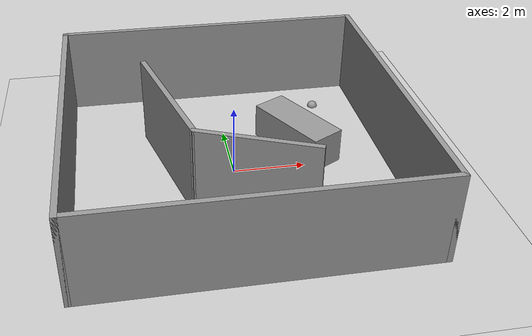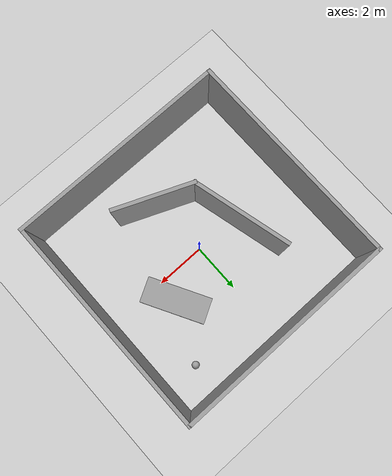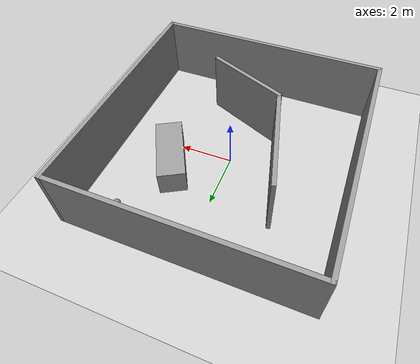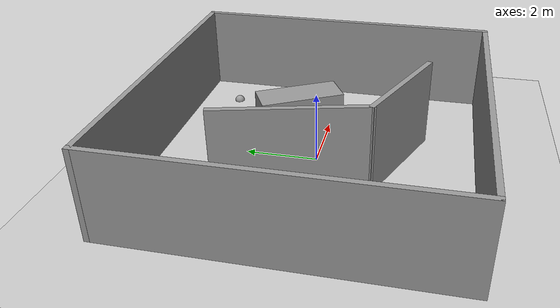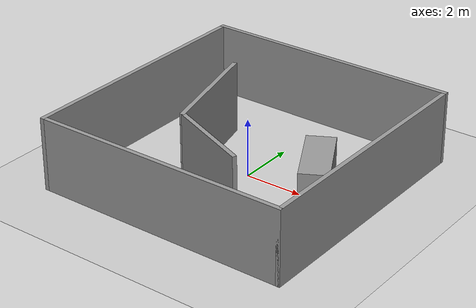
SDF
<sdf version="1.6">
 <world name="default">
  <light name="sun" type="directional">
   <pose>0 0 10 0 -0 0</pose>
   <diffuse>0.8 0.8 0.8 1</diffuse>
   <specular>0.2 0.2 0.2 1</specular>
   <attenuation>
    <range>1000</range>
    <constant>0.9</constant>
    <linear>0.01</linear>
    <quadratic>0.001</quadratic>
   </attenuation>
   <direction>-0.5 0.1 -0.9</direction>
  </light>
  <model name="ground_plane">
   <static>1</static>
   <link name="link">
    <collision name="collision">
     <geometry><plane><normal>0 0 1</normal><size>100 100</size></plane></geometry>
     <surface>
      <contact><collide_bitmask>65535</collide_bitmask></contact>
      <friction><ode><mu>100</mu><mu2>50</mu2></ode></friction>
     </surface>
    </collision>
    <visual name="visual">
     <cast_shadows>0</cast_shadows>
     <geometry><plane><normal>0 0 1</normal><size>100 100</size></plane></geometry>
     <material>
      <script><uri>file://media/materials/scripts/gazebo.material</uri><name>Gazebo/Grey</name></script>
     </material>
    </visual>
   </link>
  </model>
  <gravity>0 0 -9.8</gravity>
  <magnetic_field>6e-06 2.3e-05 -4.2e-05</magnetic_field>
  <atmosphere type="adiabatic"/>
  <physics name="default_physics" default="0" type="ode">
   <max_step_size>0.001</max_step_size>
   <real_time_factor>1</real_time_factor>
   <real_time_update_rate>1000</real_time_update_rate>
  </physics>
  <scene><ambient>0.4 0.4 0.4 1</ambient><background>0.7 0.7 0.7 1</background><shadows>1</shadows></scene>
  <audio><device>default</device></audio>
  <spherical_coordinates>
   <surface_model>EARTH_WGS84</surface_model>
   <latitude_deg>0</latitude_deg>
   <longitude_deg>0</longitude_deg>
   <elevation>0</elevation>
   <heading_deg>0</heading_deg>
  </spherical_coordinates>
  <model name="Confined_Area_10x10">
   <pose>-0.015712 0.019991 0 0 -0 0</pose>
   <link name="Wall_1">
    <collision name="Wall_1_Collision">
     <geometry><box><size>9 0.15 2.5</size></box></geometry>
     <pose>0 0 1.25 0 -0 0</pose>
    </collision>
    <visual name="Wall_1_Visual">
     <pose>0 0 1.25 0 -0 0</pose>
     <geometry><box><size>9 0.15 2.5</size></box></geometry>
     <material>
      <script><uri>file://media/materials/scripts/gazebo.material</uri><name>Gazebo/Grey</name></script>
      <ambient>1 1 1 1</ambient>
     </material>
     <meta><layer>0</layer></meta>
    </visual>
    <pose>4.425 0 0 0 -0 1.5708</pose>
   </link>
   <link name="Wall_2">
    <collision name="Wall_2_Collision">
     <geometry><box><size>9 0.15 2.5</size></box></geometry>
     <pose>0 0 1.25 0 -0 0</pose>
    </collision>
    <visual name="Wall_2_Visual">
     <pose>0 0 1.25 0 -0 0</pose>
     <geometry><box><size>9 0.15 2.5</size></box></geometry>
     <material>
      <script><uri>file://media/materials/scripts/gazebo.material</uri><name>Gazebo/Grey</name></script>
      <ambient>1 1 1 1</ambient>
     </material>
     <meta><layer>0</layer></meta>
    </visual>
    <pose>0 4.425 0 0 -0 3.14159</pose>
   </link>
   <link name="Wall_3">
    <collision name="Wall_3_Collision">
     <geometry><box><size>9 0.15 2.5</size></box></geometry>
     <pose>0 0 1.25 0 -0 0</pose>
    </collision>
    <visual name="Wall_3_Visual">
     <pose>0 0 1.25 0 -0 0</pose>
     <geometry><box><size>9 0.15 2.5</size></box></geometry>
     <material>
      <script><uri>file://media/materials/scripts/gazebo.material</uri><name>Gazebo/Grey</name></script>
      <ambient>1 1 1 1</ambient>
     </material>
     <meta><layer>0</layer></meta>
    </visual>
    <pose>-4.425 0 0 0 -0 -1.5708</pose>
   </link>
   <link name="Wall_4">
    <collision name="Wall_4_Collision">
     <geometry><box><size>9 0.15 2.5</size></box></geometry>
     <pose>0 0 1.25 0 -0 0</pose>
    </collision>
    <visual name="Wall_4_Visual">
     <pose>0 0 1.25 0 -0 0</pose>
     <geometry><box><size>9 0.15 2.5</size></box></geometry>
     <material>
      <script><uri>file://media/materials/scripts/gazebo.material</uri><name>Gazebo/Grey</name></script>
      <ambient>1 1 1 1</ambient>
     </material>
     <meta><layer>0</layer></meta>
    </visual>
    <pose>0 -4.425 0 0 -0 0</pose>
   </link>
   <static>1</static>
  </model>
  <model name="Untitled">
   <pose>-0.320911 -0.315131 0 0 -0 1.17572</pose>
   <link name="Wall_6">
    <collision name="Wall_6_Collision">
     <geometry><box><size>3.25 0.15 2.5</size></box></geometry>
     <pose>0 0 1.25 0 -0 0</pose>
    </collision>
    <visual name="Wall_6_Visual">
     <pose>0 0 1.25 0 -0 0</pose>
     <geometry><box><size>3.25 0.15 2.5</size></box></geometry>
     <material>
      <script><uri>file://media/materials/scripts/gazebo.material</uri><name>Gazebo/Grey</name></script>
      <ambient>1 1 1 1</ambient>
     </material>
     <meta><layer>0</layer></meta>
    </visual>
    <pose>-1.57215 -1.19441 0 0 -0 1.5708</pose>
   </link>
   <link name="Wall_9">
    <collision name="Wall_9_Collision">
     <geometry><box><size>4.08072 0.15 2.5</size></box></geometry>
     <pose>0 0 1.25 0 -0 0</pose>
    </collision>
    <visual name="Wall_9_Visual">
     <pose>0 0 1.25 0 -0 0</pose>
     <geometry><box><size>4.08072 0.15 2.5</size></box></geometry>
     <material>
      <script><uri>file://media/materials/scripts/gazebo.material</uri><name>Gazebo/Grey</name></script>
      <ambient>1 1 1 1</ambient>
     </material>
     <meta><layer>0</layer></meta>
    </visual>
    <pose>0 1.535 0 0 -0 0.643622</pose>
   </link>
   <static>1</static>
  </model>
  <model name="unit_box">
   <pose>2.00625 0.947689 0.5 0 -0 0.506303</pose>
   <link name="link">
    <inertial>
     <mass>1</mass>
     <inertia>
      <ixx>0.166667</ixx>
      <ixy>0</ixy>
      <ixz>0</ixz>
      <iyy>0.166667</iyy>
      <iyz>0</iyz>
      <izz>0.166667</izz>
     </inertia>
    </inertial>
    <collision name="collision"><geometry><box><size>1 2.51533 1</size></box></geometry></collision>
    <visual name="visual">
     <geometry><box><size>1 2.51533 1</size></box></geometry>
     <material>
      <script><name>Gazebo/Grey</name><uri>file://media/materials/scripts/gazebo.material</uri></script>
     </material>
    </visual>
   </link>
  </model>
  <model name="Sphere_radius_15cm">
   <link name="link">
    <inertial>
     <mass>1</mass>
     <inertia><ixx>0.1</ixx><ixy>0</ixy><ixz>0</ixz><iyy>0.1</iyy><iyz>0</iyz><izz>0.1</izz></inertia>
    </inertial>
    <visual name="visual">
     <geometry><sphere><radius>0.15</radius></sphere></geometry>
     <material>
      <script><name>Gazebo/Grey</name><uri>file://media/materials/scripts/gazebo.material</uri></script>
      <shader type="vertex"><normal_map>__default__</normal_map></shader>
      <ambient>0.3 0.3 0.3 1</ambient>
      <diffuse>0.7 0.7 0.7 1</diffuse>
      <specular>0.01 0.01 0.01 1</specular>
      <emissive>0 0 0 1</emissive>
     </material>
    </visual>
    <collision name="collision">
     <geometry><sphere><radius>0.15</radius></sphere></geometry>
     <surface>
      <friction>
       <ode><mu>1</mu><mu2>1</mu2><fdir1>0 0 0</fdir1><slip1>0</slip1><slip2>0</slip2></ode>
       <torsional>
        <coefficient>1</coefficient>
        <patch_radius>0</patch_radius>
        <surface_radius>0</surface_radius>
        <use_patch_radius>1</use_patch_radius>
        <ode><slip>0</slip></ode>
       </torsional>
      </friction>
      <bounce><restitution_coefficient>0</restitution_coefficient><threshold>1e+06</threshold></bounce>
      <contact>
       <collide_without_contact>0</collide_without_contact>
       <collide_without_contact_bitmask>1</collide_without_contact_bitmask>
       <collide_bitmask>1</collide_bitmask>
       <ode>
        <soft_cfm>0</soft_cfm>
        <soft_erp>0.2</soft_erp>
        <kp>1e+13</kp>
        <kd>1</kd>
        <max_vel>0.01</max_vel>
        <min_depth>0</min_depth>
       </ode>
       <bullet>
        <split_impulse>1</split_impulse>
        <split_impulse_penetration_threshold>-0.01</split_impulse_penetration_threshold>
        <soft_cfm>0</soft_cfm>
        <soft_erp>0.2</soft_erp>
        <kp>1e+13</kp>
        <kd>1</kd>
       </bullet>
      </contact>
     </surface>
    </collision>
   </link>
   <static>0</static>
   <pose>3.07935 3.22922 0 0 -0 0</pose>
  </model>
 </world>
</sdf>
